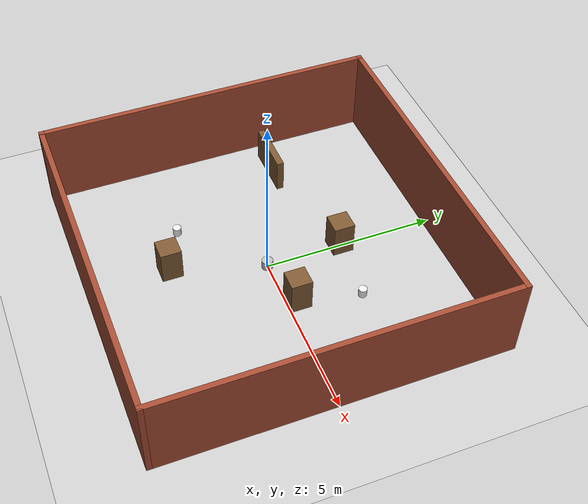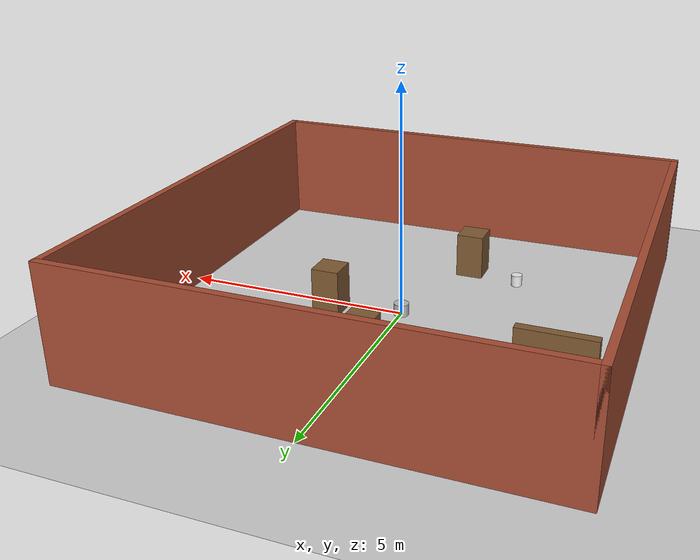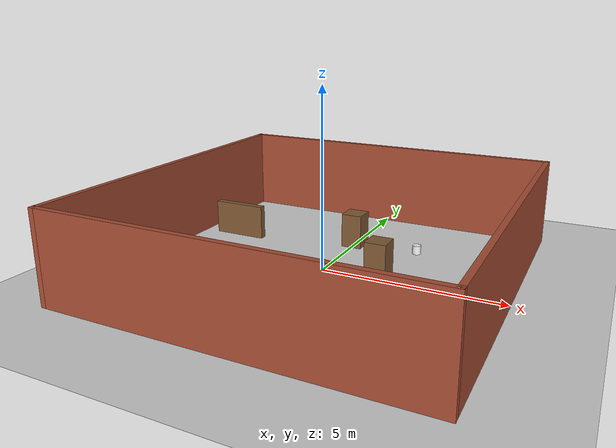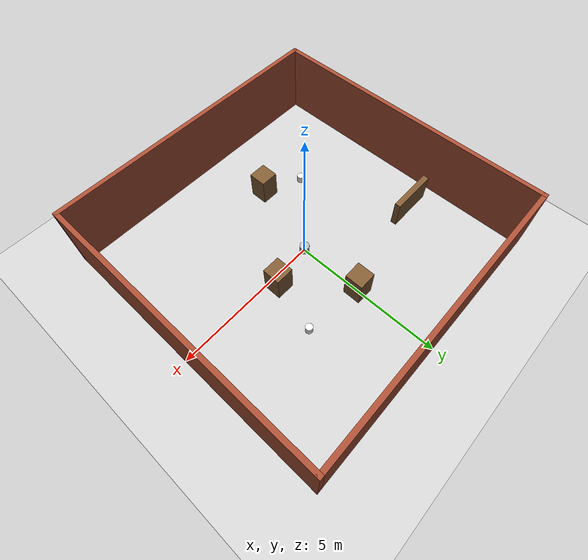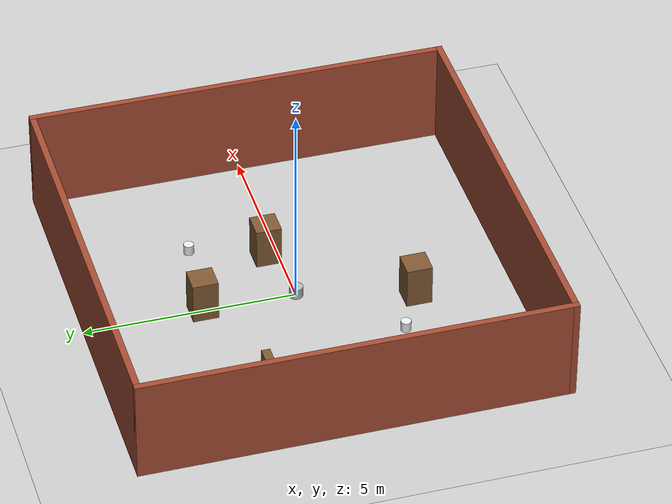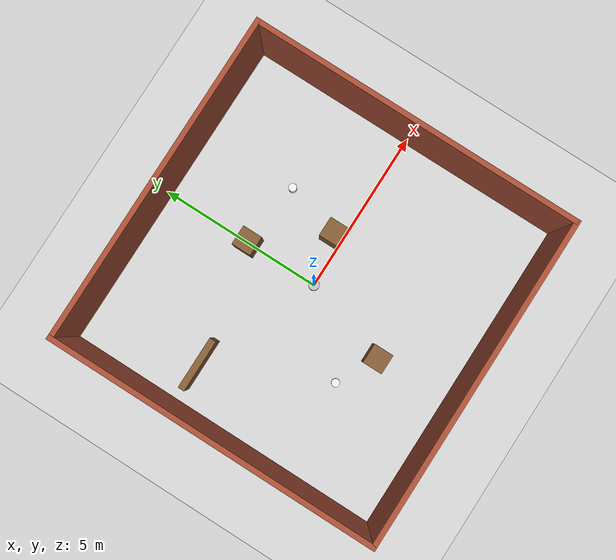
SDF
<?xml version="1.0" ?>
<sdf version="1.6">
  <world name="default">
    <plugin name="gazebo_ros_state" filename="libgazebo_ros_state.so">
      <ros><namespace>/gazebo</namespace></ros>
      <update_rate>1.0</update_rate>
    </plugin>
    <include><uri>model://ground_plane</uri></include>
    <include><uri>model://sun</uri></include>
    <physics type="ode">
      <real_time_update_rate>1000.0</real_time_update_rate>
      <max_step_size>0.001</max_step_size>
      <real_time_factor>1</real_time_factor>
    </physics>
    <include><uri>model://10by10</uri></include>
    <include><uri>model://obstacle1</uri></include>
    <include><uri>model://obstacle2</uri></include>
    <include><uri>model://obstacle3</uri></include>
    <include><uri>model://obstacle4</uri></include>
    <include><uri>model://obstacle5</uri></include>
    <include><uri>model://obstacle6</uri></include>
    <include><uri>model://obstacle7</uri></include>
    <include><uri>model://obstacle8</uri></include>
    <model name="box_m0"><static>true</static><pose>0.0 2.2 0.5 0 0 0</pose>
      <link name="link"><collision name="c"><geometry><box><size>0.6 0.6 1.0</size></box></geometry></collision>
        <visual name="v"><geometry><box><size>0.6 0.6 1.0</size></box></geometry><material><ambient>0.5 0.35 0.2 1</ambient><diffuse>0.5 0.35 0.2 1</diffuse></material></visual>
      </link></model>
    <model name="box_m1"><static>true</static><pose>-0.8 -2.6 0.5 0 0 0</pose>
      <link name="link"><collision name="c"><geometry><box><size>0.6 0.6 1.0</size></box></geometry></collision>
        <visual name="v"><geometry><box><size>0.6 0.6 1.0</size></box></geometry><material><ambient>0.5 0.35 0.2 1</ambient><diffuse>0.5 0.35 0.2 1</diffuse></material></visual>
      </link></model>
    <model name="box_m2"><static>true</static><pose>1.5 0.3 0.5 0 0 0</pose>
      <link name="link"><collision name="c"><geometry><box><size>0.6 0.6 1.0</size></box></geometry></collision>
        <visual name="v"><geometry><box><size>0.6 0.6 1.0</size></box></geometry><material><ambient>0.5 0.35 0.2 1</ambient><diffuse>0.5 0.35 0.2 1</diffuse></material></visual>
      </link></model>
    <model name="wall_m0"><static>true</static><pose>-3.6 1.5 0.5 0 0 0</pose>
      <link name="link"><collision name="c"><geometry><box><size>1.6 0.2 1.0</size></box></geometry></collision>
        <visual name="v"><geometry><box><size>1.6 0.2 1.0</size></box></geometry><material><ambient>0.5 0.35 0.2 1</ambient><diffuse>0.5 0.35 0.2 1</diffuse></material></visual>
      </link></model>
  </world>
</sdf>

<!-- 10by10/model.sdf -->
<sdf version='1.6'>
  <model name='10by10'>
      <pose>0.019579 -0.010902 0 0 -0 0</pose>
      <link name='Wall_0'>
        <collision name='Wall_0_Collision'>
          <geometry>
            <box>
              <size>10 0.15 2.5</size>
            </box>
          </geometry>
          <pose>0 0 1.25 0 -0 0</pose>
          <max_contacts>10</max_contacts>
          <surface>
            <contact>
              <ode/>
            </contact>
            <bounce/>
            <friction>
              <torsional>
                <ode/>
              </torsional>
              <ode/>
            </friction>
          </surface>
        </collision>
        <visual name='Wall_0_Visual'>
          <pose>0 0 1.25 0 -0 0</pose>
          <geometry>
            <box>
              <size>10 0.15 2.5</size>
            </box>
          </geometry>
          <material>
            <script>
              <uri>file://media/materials/scripts/gazebo.material</uri>
              <name>Gazebo/Bricks</name>
            </script>
            <ambient>1 1 1 1</ambient>
          </material>
          <meta>
            <layer>0</layer>
          </meta>
        </visual>
        <pose>-4.925 -0 0 0 -0 1.5708</pose>
        <self_collide>0</self_collide>
        <enable_wind>0</enable_wind>
        <kinematic>0</kinematic>
      </link>
      <link name='Wall_1'>
        <collision name='Wall_1_Collision'>
          <geometry>
            <box>
              <size>10 0.15 2.5</size>
            </box>
          </geometry>
          <pose>0 0 1.25 0 -0 0</pose>
          <max_contacts>10</max_contacts>
          <surface>
            <contact>
              <ode/>
            </contact>
            <bounce/>
            <friction>
              <torsional>
                <ode/>
              </torsional>
              <ode/>
            </friction>
          </surface>
        </collision>
        <visual name='Wall_1_Visual'>
          <pose>0 0 1.25 0 -0 0</pose>
          <geometry>
            <box>
              <size>10 0.15 2.5</size>
            </box>
          </geometry>
          <material>
            <script>
              <uri>file://media/materials/scripts/gazebo.material</uri>
              <name>Gazebo/Bricks</name>
            </script>
            <ambient>1 1 1 1</ambient>
          </material>
          <meta>
            <layer>0</layer>
          </meta>
        </visual>
        <pose>0 4.925 0 0 -0 0</pose>
        <self_collide>0</self_collide>
        <enable_wind>0</enable_wind>
        <kinematic>0</kinematic>
      </link>
      <link name='Wall_2'>
        <collision name='Wall_2_Collision'>
          <geometry>
            <box>
              <size>10 0.15 2.5</size>
            </box>
          </geometry>
          <pose>0 0 1.25 0 -0 0</pose>
          <max_contacts>10</max_contacts>
          <surface>
            <contact>
              <ode/>
            </contact>
            <bounce/>
            <friction>
              <torsional>
                <ode/>
              </torsional>
              <ode/>
            </friction>
          </surface>
        </collision>
        <visual name='Wall_2_Visual'>
          <pose>0 0 1.25 0 -0 0</pose>
          <geometry>
            <box>
              <size>10 0.15 2.5</size>
            </box>
          </geometry>
          <material>
            <script>
              <uri>file://media/materials/scripts/gazebo.material</uri>
              <name>Gazebo/Bricks</name>
            </script>
            <ambient>1 1 1 1</ambient>
          </material>
          <meta>
            <layer>0</layer>
          </meta>
        </visual>
        <pose>4.925 -0 0 0 -0 -1.5708</pose>
        <self_collide>0</self_collide>
        <enable_wind>0</enable_wind>
        <kinematic>0</kinematic>
      </link>
      <link name='Wall_3'>
        <collision name='Wall_3_Collision'>
          <geometry>
            <box>
              <size>10 0.15 2.5</size>
            </box>
          </geometry>
          <pose>0 0 1.25 0 -0 0</pose>
          <max_contacts>10</max_contacts>
          <surface>
            <contact>
              <ode/>
            </contact>
            <bounce/>
            <friction>
              <torsional>
                <ode/>
              </torsional>
              <ode/>
            </friction>
          </surface>
        </collision>
        <visual name='Wall_3_Visual'>
          <pose>0 0 1.25 0 -0 0</pose>
          <geometry>
            <box>
              <size>10 0.15 2.5</size>
            </box>
          </geometry>
          <material>
            <script>
              <uri>file://media/materials/scripts/gazebo.material</uri>
              <name>Gazebo/Bricks</name>
            </script>
            <ambient>1 1 1 1</ambient>
          </material>
          <meta>
            <layer>0</layer>
          </meta>
        </visual>
        <pose>0 -4.925 0 0 -0 3.14159</pose>
        <self_collide>0</self_collide>
        <enable_wind>0</enable_wind>
        <kinematic>0</kinematic>
      </link>
      <static>1</static>
    </model>
</sdf>

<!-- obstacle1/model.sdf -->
<sdf version='1.8'>
  <model name="obstacle1">
    <pose>2 2 0.25 0 0 0</pose>
    <static>false</static>
    <link name="link">
      <collision name="obstacle1_collision">
        <geometry>
          <cylinder>
            <radius>0.12</radius>
            <length>0.25</length>
          </cylinder>
        </geometry>
      </collision>
      <visual name="obstacle1_visual">
        <geometry>
          <cylinder>
            <radius>0.12</radius>
            <length>0.25</length>
          </cylinder>
        </geometry>
        <material>
          <script>
            <uri>file://media/materials/scripts/gazebo.material</uri>
            <name>Gazebo/White</name>
          </script>
        </material>
      </visual>
    </link>
  </model>
</sdf>

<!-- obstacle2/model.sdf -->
<sdf version='1.8'>
    <model name="obstacle2">
      <pose>-2 -2 0.25 0 0 0</pose>
      <static>false</static>
      <link name="link">
        <collision name="obstacle2_collision">
          <geometry>
            <cylinder>
              <radius>0.12</radius>
              <length>0.25</length>
            </cylinder>
          </geometry>
        </collision>

        <visual name="obstacle2_visual">
          <geometry>
            <cylinder>
              <radius>0.12</radius>
              <length>0.25</length>
            </cylinder>
          </geometry>
          <material>
            <script>
              <uri>file://media/materials/scripts/gazebo.material</uri>
              <name>Gazebo/White</name>
            </script>
          </material>
        </visual>
      </link>
    </model>
</sdf>

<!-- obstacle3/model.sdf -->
<sdf version='1.6'>
    <model name="obstacle3">
      <link name="link_obstacle3">
        <collision name="collision">
          <geometry>
            <cylinder>
              <radius>0.16</radius>
              <length>0.50</length>
            </cylinder>
          </geometry>
        </collision>

        <visual name="visual">
          <geometry>
            <cylinder>
              <radius>0.16</radius>
              <length>0.50</length>
            </cylinder>
          </geometry>
        </visual>
      </link>
      <plugin name="p3d_base_controller_obstacle3" filename="libgazebo_ros_p3d.so">
        <ros>
          <namespace>/obstacle</namespace>
          <remapping>odom:=odom</remapping>
        </ros>
        <always_on>true</always_on>
        <update_rate>50.0</update_rate>
        <body_name>link_obstacle3</body_name>
        <topic_name>odom_obs</topic_name>
        <gaussian_noise>0.0</gaussian_noise>
        <frame_name>world</frame_name>
        <xyz_offset>0 0 0</xyz_offset>
        <rpy_offset>0 0 0</rpy_offset>
      </plugin>
    </model>
</sdf>

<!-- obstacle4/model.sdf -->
<sdf version='1.6'>
    <model name="obstacle4">
      <link name="link_obstacle4">
        <collision name="collision">
          <geometry>
            <cylinder>
              <radius>0.16</radius>
              <length>0.50</length>
            </cylinder>
          </geometry>
        </collision>

        <visual name="visual">
          <geometry>
            <cylinder>
              <radius>0.16</radius>
              <length>0.50</length>
            </cylinder>
          </geometry>
        </visual>
      </link>
      <plugin name="p3d_base_controller_obstacle4" filename="libgazebo_ros_p3d.so">
        <ros>
          <namespace>/obstacle</namespace>
          <remapping>odom:=odom</remapping>
        </ros>
        <always_on>true</always_on>
        <update_rate>50.0</update_rate>
        <body_name>link_obstacle4</body_name>
        <topic_name>odom_obs</topic_name>
        <gaussian_noise>0.0</gaussian_noise>
        <frame_name>world</frame_name>
        <xyz_offset>0 0 0</xyz_offset>
        <rpy_offset>0 0 0</rpy_offset>
      </plugin>
    </model>
</sdf>

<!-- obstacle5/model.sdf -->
<sdf version='1.6'>
    <model name="obstacle5">
      <link name="link_obstacle5">
        <collision name="collision">
          <geometry>
            <cylinder>
              <radius>0.16</radius>
              <length>0.50</length>
            </cylinder>
          </geometry>
        </collision>

        <visual name="visual">
          <geometry>
            <cylinder>
              <radius>0.16</radius>
              <length>0.50</length>
            </cylinder>
          </geometry>
        </visual>
      </link>
      <plugin name="p3d_base_controller_obstacle5" filename="libgazebo_ros_p3d.so">
        <ros>
          <namespace>/obstacle</namespace>
          <remapping>odom:=odom</remapping>
        </ros>
        <always_on>true</always_on>
        <update_rate>50.0</update_rate>
        <body_name>link_obstacle5</body_name>
        <topic_name>odom_obs</topic_name>
        <gaussian_noise>0.0</gaussian_noise>
        <frame_name>world</frame_name>
        <xyz_offset>0 0 0</xyz_offset>
        <rpy_offset>0 0 0</rpy_offset>
      </plugin>
    </model>
</sdf>

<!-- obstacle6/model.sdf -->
<sdf version='1.6'>
    <model name="obstacle6">
      <link name="link_obstacle6">
        <collision name="collision">
          <geometry>
            <cylinder>
              <radius>0.16</radius>
              <length>0.50</length>
            </cylinder>
          </geometry>
        </collision>

        <visual name="visual">
          <geometry>
            <cylinder>
              <radius>0.16</radius>
              <length>0.50</length>
            </cylinder>
          </geometry>
        </visual>
      </link>
      <plugin name="p3d_base_controller_obstacle6" filename="libgazebo_ros_p3d.so">
        <ros>
          <namespace>/obstacle</namespace>
          <remapping>odom:=odom</remapping>
        </ros>
        <always_on>true</always_on>
        <update_rate>50.0</update_rate>
        <body_name>link_obstacle6</body_name>
        <topic_name>odom_obs</topic_name>
        <gaussian_noise>0.0</gaussian_noise>
        <frame_name>world</frame_name>
        <xyz_offset>0 0 0</xyz_offset>
        <rpy_offset>0 0 0</rpy_offset>
      </plugin>
    </model>
</sdf>

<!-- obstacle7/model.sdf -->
<sdf version='1.6'>
    <model name="obstacle7">
      <link name="link_obstacle7">
        <collision name="collision">
          <geometry>
            <cylinder>
              <radius>0.16</radius>
              <length>0.50</length>
            </cylinder>
          </geometry>
        </collision>

        <visual name="visual">
          <geometry>
            <cylinder>
              <radius>0.16</radius>
              <length>0.50</length>
            </cylinder>
          </geometry>
        </visual>
      </link>
      <plugin name="p3d_base_controller_obstacle7" filename="libgazebo_ros_p3d.so">
        <ros>
          <namespace>/obstacle</namespace>
          <remapping>odom:=odom</remapping>
        </ros>
        <always_on>true</always_on>
        <update_rate>50.0</update_rate>
        <body_name>link_obstacle7</body_name>
        <topic_name>odom_obs</topic_name>
        <gaussian_noise>0.0</gaussian_noise>
        <frame_name>world</frame_name>
        <xyz_offset>0 0 0</xyz_offset>
        <rpy_offset>0 0 0</rpy_offset>
      </plugin>
    </model>
</sdf>

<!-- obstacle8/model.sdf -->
<sdf version='1.6'>
    <model name="obstacle8">
      <link name="link_obstacle8">
        <collision name="collision">
          <geometry>
            <cylinder>
              <radius>0.16</radius>
              <length>0.50</length>
            </cylinder>
          </geometry>
        </collision>

        <visual name="visual">
          <geometry>
            <cylinder>
              <radius>0.16</radius>
              <length>0.50</length>
            </cylinder>
          </geometry>
        </visual>
      </link>
      <plugin name="p3d_base_controller_obstacle8" filename="libgazebo_ros_p3d.so">
        <ros>
          <namespace>/obstacle</namespace>
          <remapping>odom:=odom</remapping>
        </ros>
        <always_on>true</always_on>
        <update_rate>50.0</update_rate>
        <body_name>link_obstacle8</body_name>
        <topic_name>odom_obs</topic_name>
        <gaussian_noise>0.0</gaussian_noise>
        <frame_name>world</frame_name>
        <xyz_offset>0 0 0</xyz_offset>
        <rpy_offset>0 0 0</rpy_offset>
      </plugin>
    </model>
</sdf>
